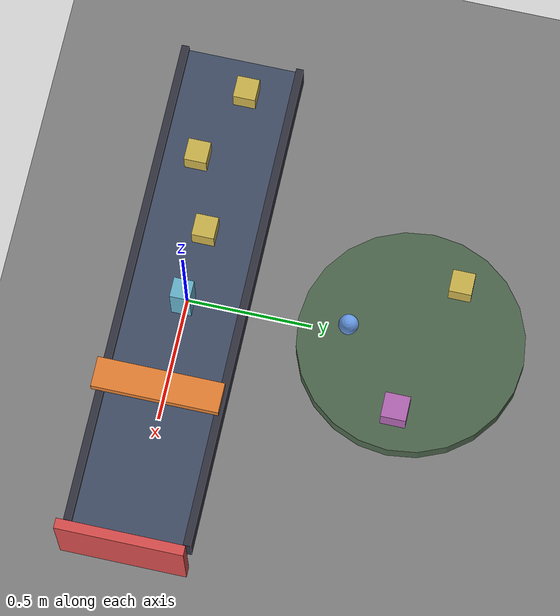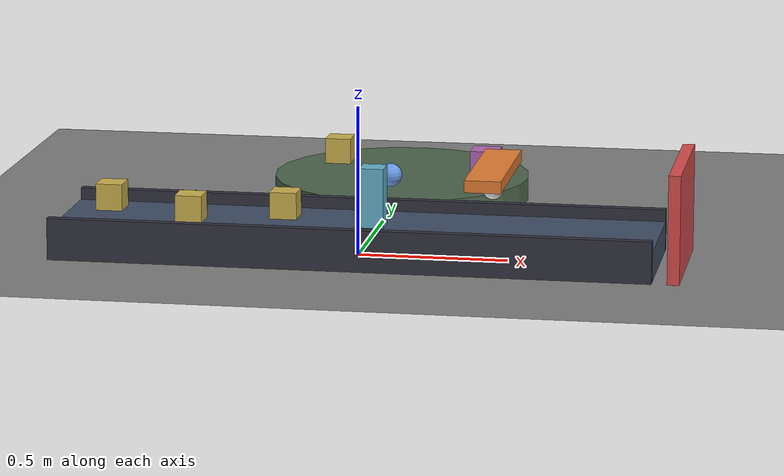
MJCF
<mujoco model="Conveyors and Magnets">
  <option timestep="0.005"/>

  <visual>
    <headlight diffuse=".4 .4 .4"/>
  </visual>

  <default>
    <geom friction="0.8"/>
    <default class="belt">
      <!-- surface slides +x at 0.6 m/s -->
      <geom type="box" rgba=".25 .3 .4 1" surfacevel="0.6 0 0 0 0 0"/>
    </default>
    <default class="turntable">
      <!-- surface rotates about local z at 1.2 rad/s -->
      <geom type="cylinder" rgba=".3 .4 .3 1" surfacevel="0 0 0 0 0 1.2"/>
    </default>
    <default class="sticky">
      <!-- holds on with up to 25 N, reaches out 1 cm -->
      <geom rgba=".85 .3 .3 1" adhesion="25" gap=".01" priority="1"/>
    </default>
    <default class="magnet">
      <!-- weaker pull but a 4 cm reach: grabs passing objects -->
      <geom rgba=".9 .5 .2 1" adhesion="8" gap=".04" priority="1"/>
    </default>
    <default class="cargo">
      <geom type="box" size=".045 .045 .045" rgba=".8 .7 .3 1"/>
    </default>
  </default>

  <worldbody>
    <light pos="0 -1 3" dir="0 .3 -1" diffuse=".8 .8 .8"/>
    <geom name="floor" type="plane" size="4 4 .1"/>

    <!-- Conveyor belt running +x, ending at the sticky wall -->
    <geom name="belt" class="belt" size="1.0 .22 .05" pos="0 0 .05"/>
    <geom name="belt_rim_front" type="box" size="1.0 .015 .07" pos="0 -.235 .07" rgba=".2 .2 .25 1"/>
    <geom name="belt_rim_back"  type="box" size="1.0 .015 .07" pos="0  .235 .07" rgba=".2 .2 .25 1"/>

    <!-- Sticky wall at the end of the belt: cargo piles up against it -->
    <geom name="sticky_wall" class="sticky" type="box" size=".02 .25 .18" pos="1.07 0 .18"/>

    <!-- Overhead magnet bar: snatches tall cargo passing underneath -->
    <geom name="magnet_bar" class="magnet" type="box" size=".06 .25 .02" pos=".45 0 .30"/>

    <!-- Turntable with riders -->
    <geom name="turntable" class="turntable" size=".45 .04" pos="0 .9 .04"/>

    <!-- Cargo on the belt -->
    <body name="cargo1" pos="-.85 .05 .16"><freejoint/><geom class="cargo"/></body>
    <body name="cargo2" pos="-.55 -.08 .16"><freejoint/><geom class="cargo"/></body>
    <body name="cargo3" pos="-.25 .02 .16"><freejoint/><geom class="cargo"/></body>
    <!-- Tall stack: top box rides high enough for the magnet bar to grab -->
    <body name="tall" pos=".05 0 .20">
      <freejoint/>
      <geom type="box" size=".04 .04 .10" rgba=".4 .7 .8 1"/>
    </body>

    <!-- Riders on the turntable (the sphere rolls itself off; boxes stay and orbit) -->
    <body name="rider1" pos=".3 .9 .13"><freejoint/><geom type="box" size=".05 .05 .05" rgba=".7 .4 .7 1"/></body>
    <body name="rider2" pos="-.25 1.05 .13"><freejoint/><geom class="cargo"/></body>
    <body name="rider3" pos="0 .65 .13"><freejoint/><geom type="sphere" size=".04" rgba=".4 .6 .9 1"/></body>

    <!-- A loose ball near the magnet bar's reach: gets yanked up -->
    <body name="loose" pos=".45 0 .24"><freejoint/><geom type="sphere" size=".035" rgba=".9 .9 .9 1"/></body>
  </worldbody>
</mujoco>
